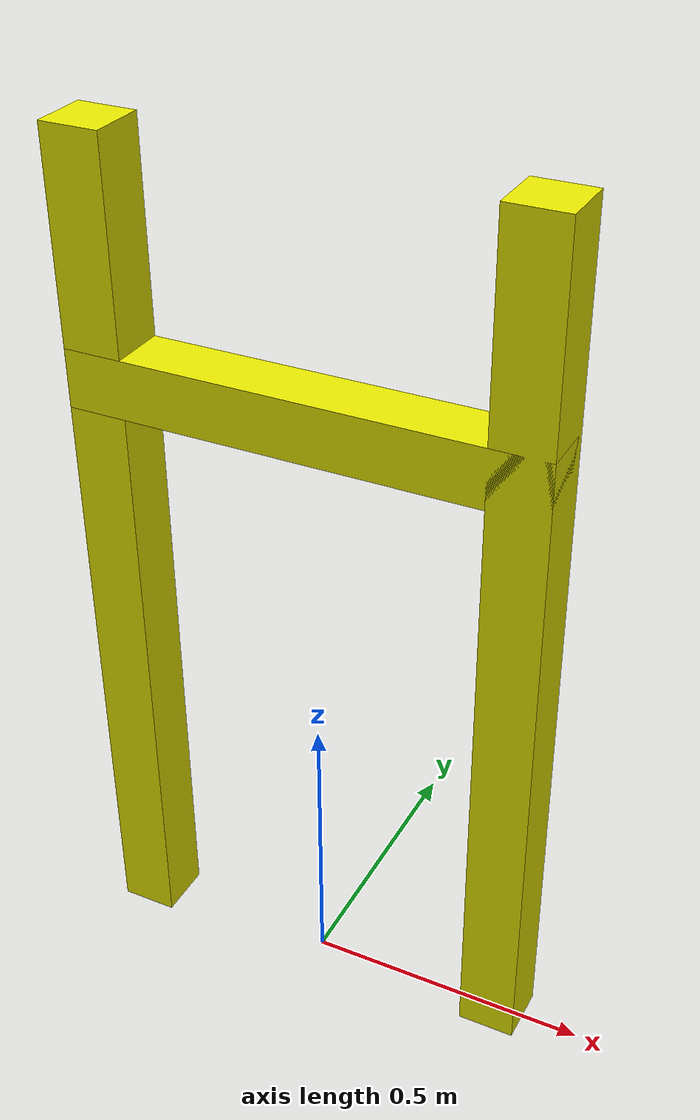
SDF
<?xml version="1.0"?>
<sdf version="1.6">
  <model name="gate">
    <static>true</static>
    <!-- Left pillar -->
    <link name="left_pillar">
      <collision name="left_pillar_collision">
        <geometry><box><size>0.1 0.1 1.5</size></box></geometry>
      </collision>
      <visual name="left_pillar_visual">
        <geometry><box><size>0.1 0.1 1.5</size></box></geometry>
        <material><ambient>0.9 0.9 0 1</ambient><diffuse>0.9 0.9 0 1</diffuse></material>
      </visual>
      <pose>-0.35 0 0.75 0 0 0</pose>
    </link>
    <!-- Right pillar -->
    <link name="right_pillar">
      <collision name="right_pillar_collision">
        <geometry><box><size>0.1 0.1 1.5</size></box></geometry>
      </collision>
      <visual name="right_pillar_visual">
        <geometry><box><size>0.1 0.1 1.5</size></box></geometry>
        <material><ambient>0.9 0.9 0 1</ambient><diffuse>0.9 0.9 0 1</diffuse></material>
      </visual>
      <pose>0.35 0 0.75 0 0 0</pose>
    </link>
    <!-- Top crossbar -->
    <link name="crossbar">
      <collision name="crossbar_collision">
        <geometry><box><size>0.8 0.1 0.1</size></box></geometry>
      </collision>
      <visual name="crossbar_visual">
        <geometry><box><size>0.8 0.1 0.1</size></box></geometry>
        <material><ambient>0.9 0.9 0 1</ambient><diffuse>0.9 0.9 0 1</diffuse></material>
      </visual>
      <pose>0 0 1.1 0 0 0</pose>
    </link>
  </model>
</sdf>
